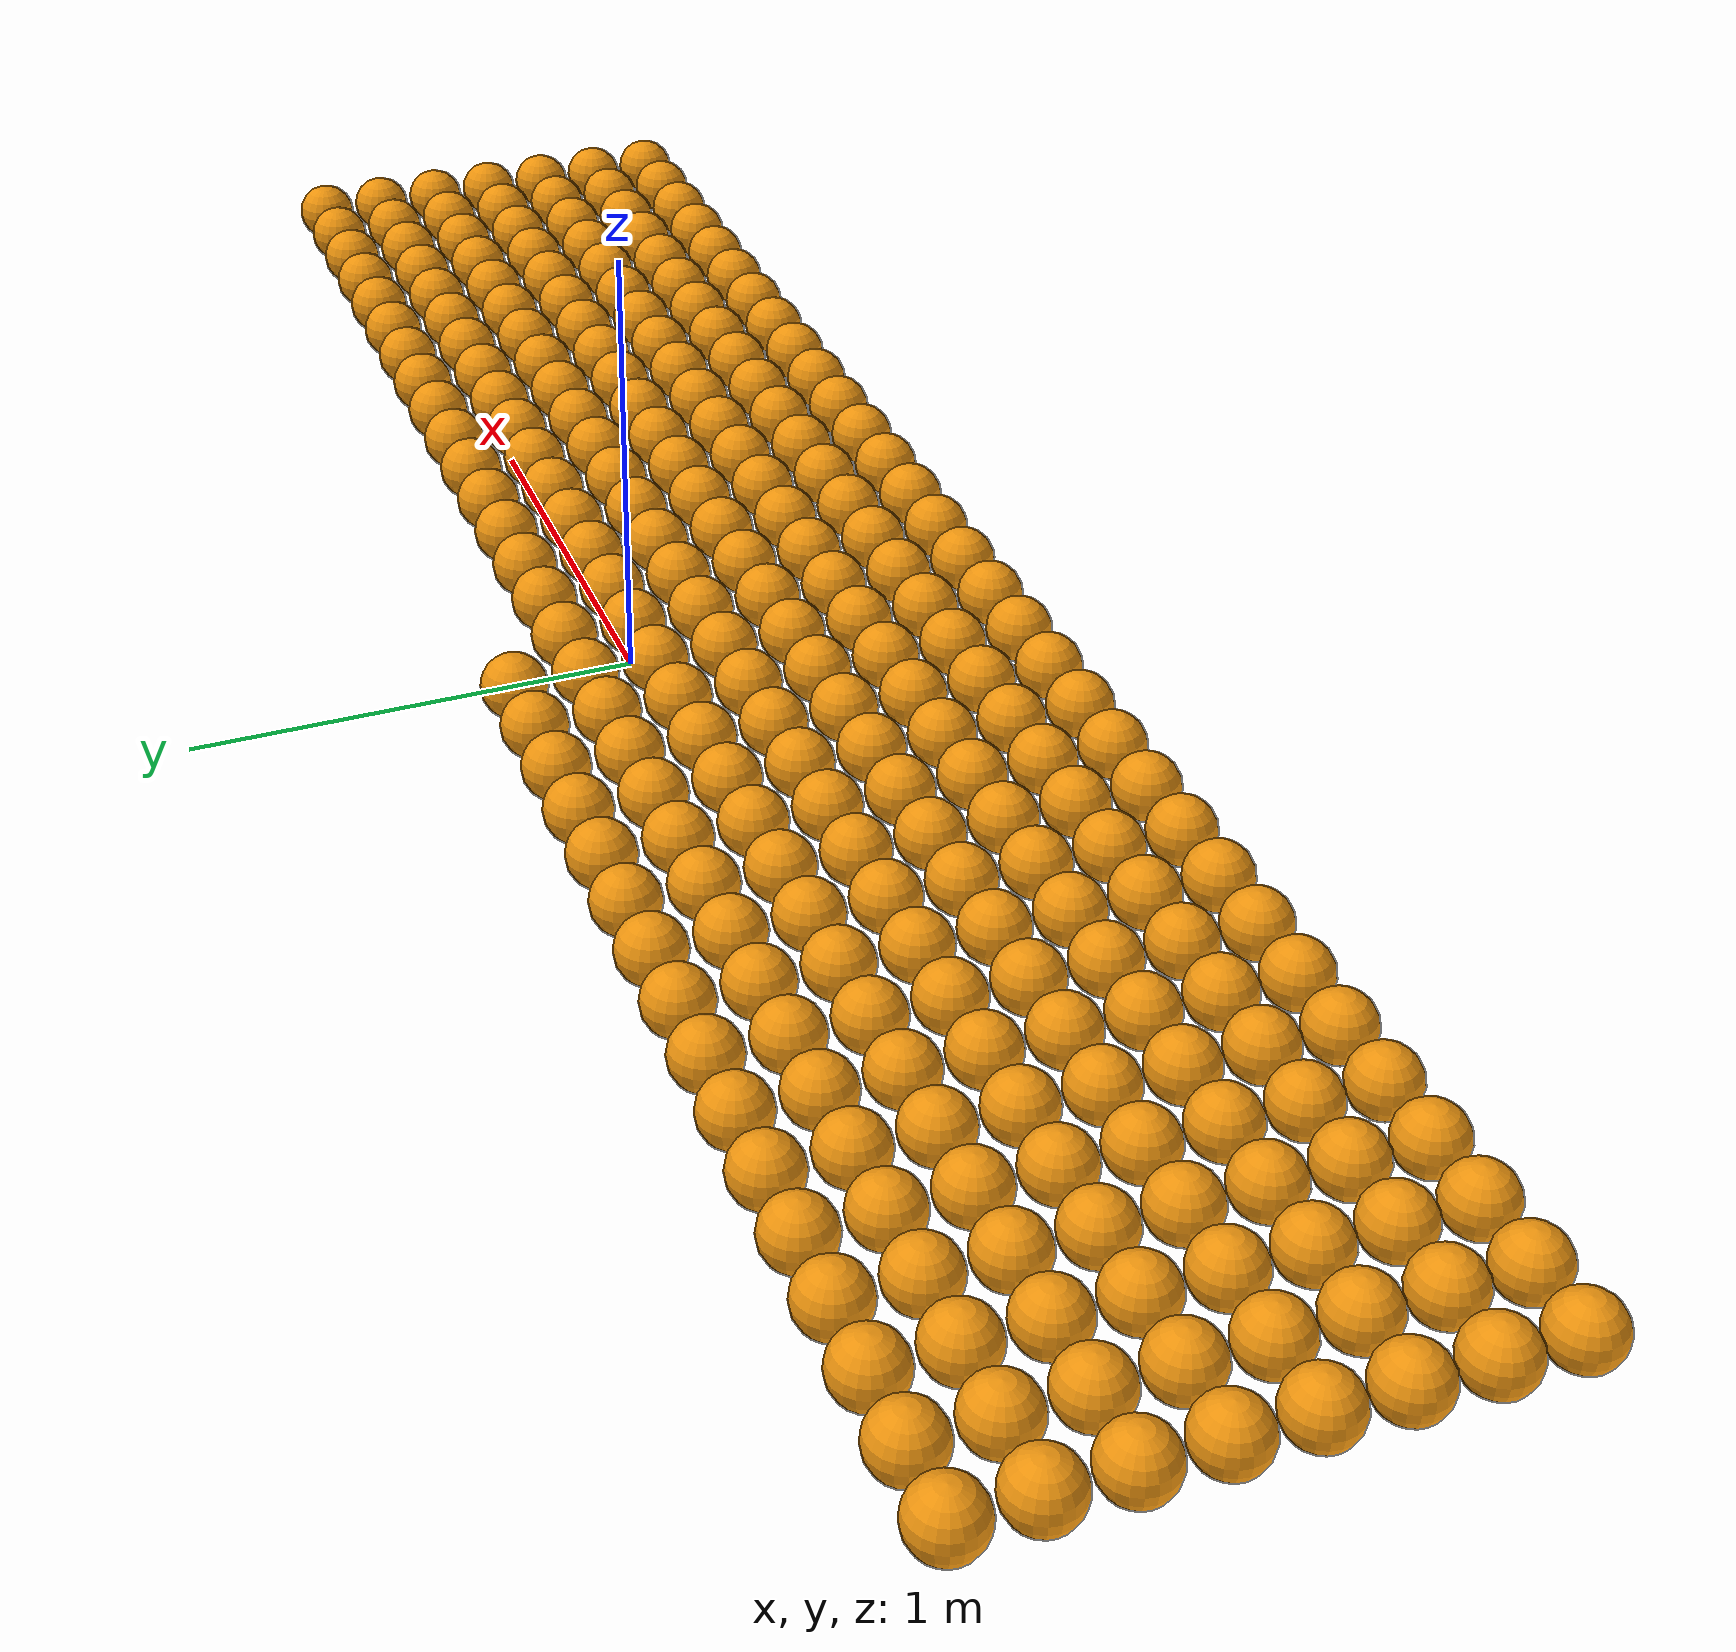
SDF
<?xml version="1.0" ?>
<sdf version="1.11">
  <world name="mars">
    <physics name="250hz" type="ignored">
      <max_step_size>0.004</max_step_size><real_time_factor>0</real_time_factor>
    </physics>
    <plugin filename="gz-sim-physics-system" name="gz::sim::systems::Physics"/>
    <plugin filename="gz-sim-scene-broadcaster-system" name="gz::sim::systems::SceneBroadcaster"/>
    <gravity>0 0 -9.8</gravity>
    <light type="directional" name="sun"><pose>0 0 10 0 0 0</pose>
      <diffuse>0.8 0.8 0.8 1</diffuse><direction>-0.5 0.1 -0.9</direction></light>
    <model name="ground_plane"><static>true</static><link name="link">
      <collision name="collision"><geometry><plane><normal>0 0 1</normal></plane></geometry>
      <surface><friction><ode><mu>0.9</mu><mu2>0.9</mu2></ode></friction></surface></collision>
    </link></model>
    <include><uri>model://fuel</uri><name>fuel_0</name><pose>-2.5340 -0.8340 0.0750 0 0 0</pose></include>
    <include><uri>model://fuel</uri><name>fuel_1</name><pose>-2.3720 -0.8340 0.0750 0 0 0</pose></include>
    <include><uri>model://fuel</uri><name>fuel_2</name><pose>-2.2100 -0.8340 0.0750 0 0 0</pose></include>
    <include><uri>model://fuel</uri><name>fuel_3</name><pose>-2.0480 -0.8340 0.0750 0 0 0</pose></include>
    <include><uri>model://fuel</uri><name>fuel_4</name><pose>-1.8860 -0.8340 0.0750 0 0 0</pose></include>
    <include><uri>model://fuel</uri><name>fuel_5</name><pose>-1.7240 -0.8340 0.0750 0 0 0</pose></include>
    <include><uri>model://fuel</uri><name>fuel_6</name><pose>-1.5620 -0.8340 0.0750 0 0 0</pose></include>
    <include><uri>model://fuel</uri><name>fuel_7</name><pose>-1.4000 -0.8340 0.0750 0 0 0</pose></include>
    <include><uri>model://fuel</uri><name>fuel_8</name><pose>-1.2380 -0.8340 0.0750 0 0 0</pose></include>
    <include><uri>model://fuel</uri><name>fuel_9</name><pose>-1.0760 -0.8340 0.0750 0 0 0</pose></include>
    <include><uri>model://fuel</uri><name>fuel_10</name><pose>-0.9140 -0.8340 0.0750 0 0 0</pose></include>
    <include><uri>model://fuel</uri><name>fuel_11</name><pose>-0.7520 -0.8340 0.0750 0 0 0</pose></include>
    <include><uri>model://fuel</uri><name>fuel_12</name><pose>-0.5900 -0.8340 0.0750 0 0 0</pose></include>
    <include><uri>model://fuel</uri><name>fuel_13</name><pose>-0.4280 -0.8340 0.0750 0 0 0</pose></include>
    <include><uri>model://fuel</uri><name>fuel_14</name><pose>-0.2660 -0.8340 0.0750 0 0 0</pose></include>
    <include><uri>model://fuel</uri><name>fuel_15</name><pose>-0.1040 -0.8340 0.0750 0 0 0</pose></include>
    <include><uri>model://fuel</uri><name>fuel_16</name><pose>0.0580 -0.8340 0.0750 0 0 0</pose></include>
    <include><uri>model://fuel</uri><name>fuel_17</name><pose>0.2200 -0.8340 0.0750 0 0 0</pose></include>
    <include><uri>model://fuel</uri><name>fuel_18</name><pose>0.3820 -0.8340 0.0750 0 0 0</pose></include>
    <include><uri>model://fuel</uri><name>fuel_19</name><pose>0.5440 -0.8340 0.0750 0 0 0</pose></include>
    <include><uri>model://fuel</uri><name>fuel_20</name><pose>0.7060 -0.8340 0.0750 0 0 0</pose></include>
    <include><uri>model://fuel</uri><name>fuel_21</name><pose>0.8680 -0.8340 0.0750 0 0 0</pose></include>
    <include><uri>model://fuel</uri><name>fuel_22</name><pose>1.0300 -0.8340 0.0750 0 0 0</pose></include>
    <include><uri>model://fuel</uri><name>fuel_23</name><pose>1.1920 -0.8340 0.0750 0 0 0</pose></include>
    <include><uri>model://fuel</uri><name>fuel_24</name><pose>1.3540 -0.8340 0.0750 0 0 0</pose></include>
    <include><uri>model://fuel</uri><name>fuel_25</name><pose>1.5160 -0.8340 0.0750 0 0 0</pose></include>
    <include><uri>model://fuel</uri><name>fuel_26</name><pose>1.6780 -0.8340 0.0750 0 0 0</pose></include>
    <include><uri>model://fuel</uri><name>fuel_27</name><pose>1.8400 -0.8340 0.0750 0 0 0</pose></include>
    <include><uri>model://fuel</uri><name>fuel_28</name><pose>2.0020 -0.8340 0.0750 0 0 0</pose></include>
    <include><uri>model://fuel</uri><name>fuel_29</name><pose>2.1640 -0.8340 0.0750 0 0 0</pose></include>
    <include><uri>model://fuel</uri><name>fuel_30</name><pose>2.3260 -0.8340 0.0750 0 0 0</pose></include>
    <include><uri>model://fuel</uri><name>fuel_31</name><pose>2.4880 -0.8340 0.0750 0 0 0</pose></include>
    <include><uri>model://fuel</uri><name>fuel_32</name><pose>-2.5340 -0.6720 0.0750 0 0 0</pose></include>
    <include><uri>model://fuel</uri><name>fuel_33</name><pose>-2.3720 -0.6720 0.0750 0 0 0</pose></include>
    <include><uri>model://fuel</uri><name>fuel_34</name><pose>-2.2100 -0.6720 0.0750 0 0 0</pose></include>
    <include><uri>model://fuel</uri><name>fuel_35</name><pose>-2.0480 -0.6720 0.0750 0 0 0</pose></include>
    <include><uri>model://fuel</uri><name>fuel_36</name><pose>-1.8860 -0.6720 0.0750 0 0 0</pose></include>
    <include><uri>model://fuel</uri><name>fuel_37</name><pose>-1.7240 -0.6720 0.0750 0 0 0</pose></include>
    <include><uri>model://fuel</uri><name>fuel_38</name><pose>-1.5620 -0.6720 0.0750 0 0 0</pose></include>
    <include><uri>model://fuel</uri><name>fuel_39</name><pose>-1.4000 -0.6720 0.0750 0 0 0</pose></include>
    <include><uri>model://fuel</uri><name>fuel_40</name><pose>-1.2380 -0.6720 0.0750 0 0 0</pose></include>
    <include><uri>model://fuel</uri><name>fuel_41</name><pose>-1.0760 -0.6720 0.0750 0 0 0</pose></include>
    <include><uri>model://fuel</uri><name>fuel_42</name><pose>-0.9140 -0.6720 0.0750 0 0 0</pose></include>
    <include><uri>model://fuel</uri><name>fuel_43</name><pose>-0.7520 -0.6720 0.0750 0 0 0</pose></include>
    <include><uri>model://fuel</uri><name>fuel_44</name><pose>-0.5900 -0.6720 0.0750 0 0 0</pose></include>
    <include><uri>model://fuel</uri><name>fuel_45</name><pose>-0.4280 -0.6720 0.0750 0 0 0</pose></include>
    <include><uri>model://fuel</uri><name>fuel_46</name><pose>-0.2660 -0.6720 0.0750 0 0 0</pose></include>
    <include><uri>model://fuel</uri><name>fuel_47</name><pose>-0.1040 -0.6720 0.0750 0 0 0</pose></include>
    <include><uri>model://fuel</uri><name>fuel_48</name><pose>0.0580 -0.6720 0.0750 0 0 0</pose></include>
    <include><uri>model://fuel</uri><name>fuel_49</name><pose>0.2200 -0.6720 0.0750 0 0 0</pose></include>
    <include><uri>model://fuel</uri><name>fuel_50</name><pose>0.3820 -0.6720 0.0750 0 0 0</pose></include>
    <include><uri>model://fuel</uri><name>fuel_51</name><pose>0.5440 -0.6720 0.0750 0 0 0</pose></include>
    <include><uri>model://fuel</uri><name>fuel_52</name><pose>0.7060 -0.6720 0.0750 0 0 0</pose></include>
    <include><uri>model://fuel</uri><name>fuel_53</name><pose>0.8680 -0.6720 0.0750 0 0 0</pose></include>
    <include><uri>model://fuel</uri><name>fuel_54</name><pose>1.0300 -0.6720 0.0750 0 0 0</pose></include>
    <include><uri>model://fuel</uri><name>fuel_55</name><pose>1.1920 -0.6720 0.0750 0 0 0</pose></include>
    <include><uri>model://fuel</uri><name>fuel_56</name><pose>1.3540 -0.6720 0.0750 0 0 0</pose></include>
    <include><uri>model://fuel</uri><name>fuel_57</name><pose>1.5160 -0.6720 0.0750 0 0 0</pose></include>
    <include><uri>model://fuel</uri><name>fuel_58</name><pose>1.6780 -0.6720 0.0750 0 0 0</pose></include>
    <include><uri>model://fuel</uri><name>fuel_59</name><pose>1.8400 -0.6720 0.0750 0 0 0</pose></include>
    <include><uri>model://fuel</uri><name>fuel_60</name><pose>2.0020 -0.6720 0.0750 0 0 0</pose></include>
    <include><uri>model://fuel</uri><name>fuel_61</name><pose>2.1640 -0.6720 0.0750 0 0 0</pose></include>
    <include><uri>model://fuel</uri><name>fuel_62</name><pose>2.3260 -0.6720 0.0750 0 0 0</pose></include>
    <include><uri>model://fuel</uri><name>fuel_63</name><pose>2.4880 -0.6720 0.0750 0 0 0</pose></include>
    <include><uri>model://fuel</uri><name>fuel_64</name><pose>-2.5340 -0.5100 0.0750 0 0 0</pose></include>
    <include><uri>model://fuel</uri><name>fuel_65</name><pose>-2.3720 -0.5100 0.0750 0 0 0</pose></include>
    <include><uri>model://fuel</uri><name>fuel_66</name><pose>-2.2100 -0.5100 0.0750 0 0 0</pose></include>
    <include><uri>model://fuel</uri><name>fuel_67</name><pose>-2.0480 -0.5100 0.0750 0 0 0</pose></include>
    <include><uri>model://fuel</uri><name>fuel_68</name><pose>-1.8860 -0.5100 0.0750 0 0 0</pose></include>
    <include><uri>model://fuel</uri><name>fuel_69</name><pose>-1.7240 -0.5100 0.0750 0 0 0</pose></include>
    <include><uri>model://fuel</uri><name>fuel_70</name><pose>-1.5620 -0.5100 0.0750 0 0 0</pose></include>
    <include><uri>model://fuel</uri><name>fuel_71</name><pose>-1.4000 -0.5100 0.0750 0 0 0</pose></include>
    <include><uri>model://fuel</uri><name>fuel_72</name><pose>-1.2380 -0.5100 0.0750 0 0 0</pose></include>
    <include><uri>model://fuel</uri><name>fuel_73</name><pose>-1.0760 -0.5100 0.0750 0 0 0</pose></include>
    <include><uri>model://fuel</uri><name>fuel_74</name><pose>-0.9140 -0.5100 0.0750 0 0 0</pose></include>
    <include><uri>model://fuel</uri><name>fuel_75</name><pose>-0.7520 -0.5100 0.0750 0 0 0</pose></include>
    <include><uri>model://fuel</uri><name>fuel_76</name><pose>-0.5900 -0.5100 0.0750 0 0 0</pose></include>
    <include><uri>model://fuel</uri><name>fuel_77</name><pose>-0.4280 -0.5100 0.0750 0 0 0</pose></include>
    <include><uri>model://fuel</uri><name>fuel_78</name><pose>-0.2660 -0.5100 0.0750 0 0 0</pose></include>
    <include><uri>model://fuel</uri><name>fuel_79</name><pose>-0.1040 -0.5100 0.0750 0 0 0</pose></include>
    <include><uri>model://fuel</uri><name>fuel_80</name><pose>0.0580 -0.5100 0.0750 0 0 0</pose></include>
    <include><uri>model://fuel</uri><name>fuel_81</name><pose>0.2200 -0.5100 0.0750 0 0 0</pose></include>
    <include><uri>model://fuel</uri><name>fuel_82</name><pose>0.3820 -0.5100 0.0750 0 0 0</pose></include>
    <include><uri>model://fuel</uri><name>fuel_83</name><pose>0.5440 -0.5100 0.0750 0 0 0</pose></include>
    <include><uri>model://fuel</uri><name>fuel_84</name><pose>0.7060 -0.5100 0.0750 0 0 0</pose></include>
    <include><uri>model://fuel</uri><name>fuel_85</name><pose>0.8680 -0.5100 0.0750 0 0 0</pose></include>
    <include><uri>model://fuel</uri><name>fuel_86</name><pose>1.0300 -0.5100 0.0750 0 0 0</pose></include>
    <include><uri>model://fuel</uri><name>fuel_87</name><pose>1.1920 -0.5100 0.0750 0 0 0</pose></include>
    <include><uri>model://fuel</uri><name>fuel_88</name><pose>1.3540 -0.5100 0.0750 0 0 0</pose></include>
    <include><uri>model://fuel</uri><name>fuel_89</name><pose>1.5160 -0.5100 0.0750 0 0 0</pose></include>
    <include><uri>model://fuel</uri><name>fuel_90</name><pose>1.6780 -0.5100 0.0750 0 0 0</pose></include>
    <include><uri>model://fuel</uri><name>fuel_91</name><pose>1.8400 -0.5100 0.0750 0 0 0</pose></include>
    <include><uri>model://fuel</uri><name>fuel_92</name><pose>2.0020 -0.5100 0.0750 0 0 0</pose></include>
    <include><uri>model://fuel</uri><name>fuel_93</name><pose>2.1640 -0.5100 0.0750 0 0 0</pose></include>
    <include><uri>model://fuel</uri><name>fuel_94</name><pose>2.3260 -0.5100 0.0750 0 0 0</pose></include>
    <include><uri>model://fuel</uri><name>fuel_95</name><pose>2.4880 -0.5100 0.0750 0 0 0</pose></include>
    <include><uri>model://fuel</uri><name>fuel_96</name><pose>-2.5340 -0.3480 0.0750 0 0 0</pose></include>
    <include><uri>model://fuel</uri><name>fuel_97</name><pose>-2.3720 -0.3480 0.0750 0 0 0</pose></include>
    <include><uri>model://fuel</uri><name>fuel_98</name><pose>-2.2100 -0.3480 0.0750 0 0 0</pose></include>
    <include><uri>model://fuel</uri><name>fuel_99</name><pose>-2.0480 -0.3480 0.0750 0 0 0</pose></include>
    <include><uri>model://fuel</uri><name>fuel_100</name><pose>-1.8860 -0.3480 0.0750 0 0 0</pose></include>
    <include><uri>model://fuel</uri><name>fuel_101</name><pose>-1.7240 -0.3480 0.0750 0 0 0</pose></include>
    <include><uri>model://fuel</uri><name>fuel_102</name><pose>-1.5620 -0.3480 0.0750 0 0 0</pose></include>
    <include><uri>model://fuel</uri><name>fuel_103</name><pose>-1.4000 -0.3480 0.0750 0 0 0</pose></include>
    <include><uri>model://fuel</uri><name>fuel_104</name><pose>-1.2380 -0.3480 0.0750 0 0 0</pose></include>
    <include><uri>model://fuel</uri><name>fuel_105</name><pose>-1.0760 -0.3480 0.0750 0 0 0</pose></include>
    <include><uri>model://fuel</uri><name>fuel_106</name><pose>-0.9140 -0.3480 0.0750 0 0 0</pose></include>
    <include><uri>model://fuel</uri><name>fuel_107</name><pose>-0.7520 -0.3480 0.0750 0 0 0</pose></include>
    <include><uri>model://fuel</uri><name>fuel_108</name><pose>-0.5900 -0.3480 0.0750 0 0 0</pose></include>
    <include><uri>model://fuel</uri><name>fuel_109</name><pose>-0.4280 -0.3480 0.0750 0 0 0</pose></include>
    <include><uri>model://fuel</uri><name>fuel_110</name><pose>-0.2660 -0.3480 0.0750 0 0 0</pose></include>
    <include><uri>model://fuel</uri><name>fuel_111</name><pose>-0.1040 -0.3480 0.0750 0 0 0</pose></include>
    <include><uri>model://fuel</uri><name>fuel_112</name><pose>0.0580 -0.3480 0.0750 0 0 0</pose></include>
    <include><uri>model://fuel</uri><name>fuel_113</name><pose>0.2200 -0.3480 0.0750 0 0 0</pose></include>
    <include><uri>model://fuel</uri><name>fuel_114</name><pose>0.3820 -0.3480 0.0750 0 0 0</pose></include>
    <include><uri>model://fuel</uri><name>fuel_115</name><pose>0.5440 -0.3480 0.0750 0 0 0</pose></include>
    <include><uri>model://fuel</uri><name>fuel_116</name><pose>0.7060 -0.3480 0.0750 0 0 0</pose></include>
    <include><uri>model://fuel</uri><name>fuel_117</name><pose>0.8680 -0.3480 0.0750 0 0 0</pose></include>
    <include><uri>model://fuel</uri><name>fuel_118</name><pose>1.0300 -0.3480 0.0750 0 0 0</pose></include>
    <include><uri>model://fuel</uri><name>fuel_119</name><pose>1.1920 -0.3480 0.0750 0 0 0</pose></include>
    <include><uri>model://fuel</uri><name>fuel_120</name><pose>1.3540 -0.3480 0.0750 0 0 0</pose></include>
    <include><uri>model://fuel</uri><name>fuel_121</name><pose>1.5160 -0.3480 0.0750 0 0 0</pose></include>
    <include><uri>model://fuel</uri><name>fuel_122</name><pose>1.6780 -0.3480 0.0750 0 0 0</pose></include>
    <include><uri>model://fuel</uri><name>fuel_123</name><pose>1.8400 -0.3480 0.0750 0 0 0</pose></include>
    <include><uri>model://fuel</uri><name>fuel_124</name><pose>2.0020 -0.3480 0.0750 0 0 0</pose></include>
    <include><uri>model://fuel</uri><name>fuel_125</name><pose>2.1640 -0.3480 0.0750 0 0 0</pose></include>
    <include><uri>model://fuel</uri><name>fuel_126</name><pose>2.3260 -0.3480 0.0750 0 0 0</pose></include>
    <include><uri>model://fuel</uri><name>fuel_127</name><pose>2.4880 -0.3480 0.0750 0 0 0</pose></include>
    <include><uri>model://fuel</uri><name>fuel_128</name><pose>-2.5340 -0.1860 0.0750 0 0 0</pose></include>
    <include><uri>model://fuel</uri><name>fuel_129</name><pose>-2.3720 -0.1860 0.0750 0 0 0</pose></include>
    <include><uri>model://fuel</uri><name>fuel_130</name><pose>-2.2100 -0.1860 0.0750 0 0 0</pose></include>
    <include><uri>model://fuel</uri><name>fuel_131</name><pose>-2.0480 -0.1860 0.0750 0 0 0</pose></include>
    <include><uri>model://fuel</uri><name>fuel_132</name><pose>-1.8860 -0.1860 0.0750 0 0 0</pose></include>
    <include><uri>model://fuel</uri><name>fuel_133</name><pose>-1.7240 -0.1860 0.0750 0 0 0</pose></include>
    <include><uri>model://fuel</uri><name>fuel_134</name><pose>-1.5620 -0.1860 0.0750 0 0 0</pose></include>
    <include><uri>model://fuel</uri><name>fuel_135</name><pose>-1.4000 -0.1860 0.0750 0 0 0</pose></include>
    <include><uri>model://fuel</uri><name>fuel_136</name><pose>-1.2380 -0.1860 0.0750 0 0 0</pose></include>
    <include><uri>model://fuel</uri><name>fuel_137</name><pose>-1.0760 -0.1860 0.0750 0 0 0</pose></include>
    <include><uri>model://fuel</uri><name>fuel_138</name><pose>-0.9140 -0.1860 0.0750 0 0 0</pose></include>
    <include><uri>model://fuel</uri><name>fuel_139</name><pose>-0.7520 -0.1860 0.0750 0 0 0</pose></include>
    <include><uri>model://fuel</uri><name>fuel_140</name><pose>-0.5900 -0.1860 0.0750 0 0 0</pose></include>
    <include><uri>model://fuel</uri><name>fuel_141</name><pose>-0.4280 -0.1860 0.0750 0 0 0</pose></include>
    <include><uri>model://fuel</uri><name>fuel_142</name><pose>-0.2660 -0.1860 0.0750 0 0 0</pose></include>
    <include><uri>model://fuel</uri><name>fuel_143</name><pose>-0.1040 -0.1860 0.0750 0 0 0</pose></include>
    <include><uri>model://fuel</uri><name>fuel_144</name><pose>0.0580 -0.1860 0.0750 0 0 0</pose></include>
    <include><uri>model://fuel</uri><name>fuel_145</name><pose>0.2200 -0.1860 0.0750 0 0 0</pose></include>
    <include><uri>model://fuel</uri><name>fuel_146</name><pose>0.3820 -0.1860 0.0750 0 0 0</pose></include>
    <include><uri>model://fuel</uri><name>fuel_147</name><pose>0.5440 -0.1860 0.0750 0 0 0</pose></include>
    <include><uri>model://fuel</uri><name>fuel_148</name><pose>0.7060 -0.1860 0.0750 0 0 0</pose></include>
    <include><uri>model://fuel</uri><name>fuel_149</name><pose>0.8680 -0.1860 0.0750 0 0 0</pose></include>
    <include><uri>model://fuel</uri><name>fuel_150</name><pose>1.0300 -0.1860 0.0750 0 0 0</pose></include>
    <include><uri>model://fuel</uri><name>fuel_151</name><pose>1.1920 -0.1860 0.0750 0 0 0</pose></include>
    <include><uri>model://fuel</uri><name>fuel_152</name><pose>1.3540 -0.1860 0.0750 0 0 0</pose></include>
    <include><uri>model://fuel</uri><name>fuel_153</name><pose>1.5160 -0.1860 0.0750 0 0 0</pose></include>
    <include><uri>model://fuel</uri><name>fuel_154</name><pose>1.6780 -0.1860 0.0750 0 0 0</pose></include>
    <include><uri>model://fuel</uri><name>fuel_155</name><pose>1.8400 -0.1860 0.0750 0 0 0</pose></include>
    <include><uri>model://fuel</uri><name>fuel_156</name><pose>2.0020 -0.1860 0.0750 0 0 0</pose></include>
    <include><uri>model://fuel</uri><name>fuel_157</name><pose>2.1640 -0.1860 0.0750 0 0 0</pose></include>
    <include><uri>model://fuel</uri><name>fuel_158</name><pose>2.3260 -0.1860 0.0750 0 0 0</pose></include>
    <include><uri>model://fuel</uri><name>fuel_159</name><pose>2.4880 -0.1860 0.0750 0 0 0</pose></include>
    <include><uri>model://fuel</uri><name>fuel_160</name><pose>-2.5340 -0.0240 0.0750 0 0 0</pose></include>
    <include><uri>model://fuel</uri><name>fuel_161</name><pose>-2.3720 -0.0240 0.0750 0 0 0</pose></include>
    <include><uri>model://fuel</uri><name>fuel_162</name><pose>-2.2100 -0.0240 0.0750 0 0 0</pose></include>
    <include><uri>model://fuel</uri><name>fuel_163</name><pose>-2.0480 -0.0240 0.0750 0 0 0</pose></include>
    <include><uri>model://fuel</uri><name>fuel_164</name><pose>-1.8860 -0.0240 0.0750 0 0 0</pose></include>
    <include><uri>model://fuel</uri><name>fuel_165</name><pose>-1.7240 -0.0240 0.0750 0 0 0</pose></include>
    <include><uri>model://fuel</uri><name>fuel_166</name><pose>-1.5620 -0.0240 0.0750 0 0 0</pose></include>
    <include><uri>model://fuel</uri><name>fuel_167</name><pose>-1.4000 -0.0240 0.0750 0 0 0</pose></include>
    <include><uri>model://fuel</uri><name>fuel_168</name><pose>-1.2380 -0.0240 0.0750 0 0 0</pose></include>
    <include><uri>model://fuel</uri><name>fuel_169</name><pose>-1.0760 -0.0240 0.0750 0 0 0</pose></include>
    <include><uri>model://fuel</uri><name>fuel_170</name><pose>-0.9140 -0.0240 0.0750 0 0 0</pose></include>
    <include><uri>model://fuel</uri><name>fuel_171</name><pose>-0.7520 -0.0240 0.0750 0 0 0</pose></include>
    <include><uri>model://fuel</uri><name>fuel_172</name><pose>-0.5900 -0.0240 0.0750 0 0 0</pose></include>
    <include><uri>model://fuel</uri><name>fuel_173</name><pose>-0.4280 -0.0240 0.0750 0 0 0</pose></include>
    <include><uri>model://fuel</uri><name>fuel_174</name><pose>-0.2660 -0.0240 0.0750 0 0 0</pose></include>
    <include><uri>model://fuel</uri><name>fuel_175</name><pose>-0.1040 -0.0240 0.0750 0 0 0</pose></include>
    <include><uri>model://fuel</uri><name>fuel_176</name><pose>0.0580 -0.0240 0.0750 0 0 0</pose></include>
    <include><uri>model://fuel</uri><name>fuel_177</name><pose>0.2200 -0.0240 0.0750 0 0 0</pose></include>
    <include><uri>model://fuel</uri><name>fuel_178</name><pose>0.3820 -0.0240 0.0750 0 0 0</pose></include>
    <include><uri>model://fuel</uri><name>fuel_179</name><pose>0.5440 -0.0240 0.0750 0 0 0</pose></include>
    <include><uri>model://fuel</uri><name>fuel_180</name><pose>0.7060 -0.0240 0.0750 0 0 0</pose></include>
    <include><uri>model://fuel</uri><name>fuel_181</name><pose>0.8680 -0.0240 0.0750 0 0 0</pose></include>
    <include><uri>model://fuel</uri><name>fuel_182</name><pose>1.0300 -0.0240 0.0750 0 0 0</pose></include>
    <include><uri>model://fuel</uri><name>fuel_183</name><pose>1.1920 -0.0240 0.0750 0 0 0</pose></include>
    <include><uri>model://fuel</uri><name>fuel_184</name><pose>1.3540 -0.0240 0.0750 0 0 0</pose></include>
    <include><uri>model://fuel</uri><name>fuel_185</name><pose>1.5160 -0.0240 0.0750 0 0 0</pose></include>
    <include><uri>model://fuel</uri><name>fuel_186</name><pose>1.6780 -0.0240 0.0750 0 0 0</pose></include>
    <include><uri>model://fuel</uri><name>fuel_187</name><pose>1.8400 -0.0240 0.0750 0 0 0</pose></include>
    <include><uri>model://fuel</uri><name>fuel_188</name><pose>2.0020 -0.0240 0.0750 0 0 0</pose></include>
    <include><uri>model://fuel</uri><name>fuel_189</name><pose>2.1640 -0.0240 0.0750 0 0 0</pose></include>
    <include><uri>model://fuel</uri><name>fuel_190</name><pose>2.3260 -0.0240 0.0750 0 0 0</pose></include>
    <include><uri>model://fuel</uri><name>fuel_191</name><pose>2.4880 -0.0240 0.0750 0 0 0</pose></include>
    <include><uri>model://fuel</uri><name>fuel_192</name><pose>-2.5340 0.1380 0.0750 0 0 0</pose></include>
    <include><uri>model://fuel</uri><name>fuel_193</name><pose>-2.3720 0.1380 0.0750 0 0 0</pose></include>
    <include><uri>model://fuel</uri><name>fuel_194</name><pose>-2.2100 0.1380 0.0750 0 0 0</pose></include>
    <include><uri>model://fuel</uri><name>fuel_195</name><pose>-2.0480 0.1380 0.0750 0 0 0</pose></include>
    <include><uri>model://fuel</uri><name>fuel_196</name><pose>-1.8860 0.1380 0.0750 0 0 0</pose></include>
    <include><uri>model://fuel</uri><name>fuel_197</name><pose>-1.7240 0.1380 0.0750 0 0 0</pose></include>
    <include><uri>model://fuel</uri><name>fuel_198</name><pose>-1.5620 0.1380 0.0750 0 0 0</pose></include>
    <include><uri>model://fuel</uri><name>fuel_199</name><pose>-1.4000 0.1380 0.0750 0 0 0</pose></include>
    <include><uri>model://fuel</uri><name>fuel_200</name><pose>-1.2380 0.1380 0.0750 0 0 0</pose></include>
    <include><uri>model://fuel</uri><name>fuel_201</name><pose>-1.0760 0.1380 0.0750 0 0 0</pose></include>
    <include><uri>model://fuel</uri><name>fuel_202</name><pose>-0.9140 0.1380 0.0750 0 0 0</pose></include>
    <include><uri>model://fuel</uri><name>fuel_203</name><pose>-0.7520 0.1380 0.0750 0 0 0</pose></include>
    <include><uri>model://fuel</uri><name>fuel_204</name><pose>-0.5900 0.1380 0.0750 0 0 0</pose></include>
    <include><uri>model://fuel</uri><name>fuel_205</name><pose>-0.4280 0.1380 0.0750 0 0 0</pose></include>
    <include><uri>model://fuel</uri><name>fuel_206</name><pose>-0.2660 0.1380 0.0750 0 0 0</pose></include>
    <include><uri>model://fuel</uri><name>fuel_207</name><pose>-0.1040 0.1380 0.0750 0 0 0</pose></include>
    <include><uri>model://fuel</uri><name>fuel_208</name><pose>0.0580 0.1380 0.0750 0 0 0</pose></include>
    <include><uri>model://fuel</uri><name>fuel_209</name><pose>0.2200 0.1380 0.0750 0 0 0</pose></include>
    <include><uri>model://fuel</uri><name>fuel_210</name><pose>0.3820 0.1380 0.0750 0 0 0</pose></include>
    <include><uri>model://fuel</uri><name>fuel_211</name><pose>0.5440 0.1380 0.0750 0 0 0</pose></include>
    <include><uri>model://fuel</uri><name>fuel_212</name><pose>0.7060 0.1380 0.0750 0 0 0</pose></include>
    <include><uri>model://fuel</uri><name>fuel_213</name><pose>0.8680 0.1380 0.0750 0 0 0</pose></include>
    <include><uri>model://fuel</uri><name>fuel_214</name><pose>1.0300 0.1380 0.0750 0 0 0</pose></include>
    <include><uri>model://fuel</uri><name>fuel_215</name><pose>1.1920 0.1380 0.0750 0 0 0</pose></include>
    <include><uri>model://fuel</uri><name>fuel_216</name><pose>1.3540 0.1380 0.0750 0 0 0</pose></include>
    <include><uri>model://fuel</uri><name>fuel_217</name><pose>1.5160 0.1380 0.0750 0 0 0</pose></include>
    <include><uri>model://fuel</uri><name>fuel_218</name><pose>1.6780 0.1380 0.0750 0 0 0</pose></include>
    <include><uri>model://fuel</uri><name>fuel_219</name><pose>1.8400 0.1380 0.0750 0 0 0</pose></include>
    <include><uri>model://fuel</uri><name>fuel_220</name><pose>2.0020 0.1380 0.0750 0 0 0</pose></include>
    <include><uri>model://fuel</uri><name>fuel_221</name><pose>2.1640 0.1380 0.0750 0 0 0</pose></include>
    <include><uri>model://fuel</uri><name>fuel_222</name><pose>2.3260 0.1380 0.0750 0 0 0</pose></include>
    <include><uri>model://fuel</uri><name>fuel_223</name><pose>2.4880 0.1380 0.0750 0 0 0</pose></include>
    <include><uri>model://fuel</uri><name>fuel_224</name><pose>-2.5340 0.3000 0.0750 0 0 0</pose></include>
    <include><uri>model://fuel</uri><name>fuel_225</name><pose>-2.3720 0.3000 0.0750 0 0 0</pose></include>
    <include><uri>model://fuel</uri><name>fuel_226</name><pose>-2.2100 0.3000 0.0750 0 0 0</pose></include>
    <include><uri>model://fuel</uri><name>fuel_227</name><pose>-2.0480 0.3000 0.0750 0 0 0</pose></include>
    <include><uri>model://fuel</uri><name>fuel_228</name><pose>-1.8860 0.3000 0.0750 0 0 0</pose></include>
    <include><uri>model://fuel</uri><name>fuel_229</name><pose>-1.7240 0.3000 0.0750 0 0 0</pose></include>
    <include><uri>model://fuel</uri><name>fuel_230</name><pose>-1.5620 0.3000 0.0750 0 0 0</pose></include>
    <include><uri>model://fuel</uri><name>fuel_231</name><pose>-1.4000 0.3000 0.0750 0 0 0</pose></include>
    <include><uri>model://fuel</uri><name>fuel_232</name><pose>-1.2380 0.3000 0.0750 0 0 0</pose></include>
    <include><uri>model://fuel</uri><name>fuel_233</name><pose>-1.0760 0.3000 0.0750 0 0 0</pose></include>
    <include><uri>model://fuel</uri><name>fuel_234</name><pose>-0.9140 0.3000 0.0750 0 0 0</pose></include>
    <include><uri>model://fuel</uri><name>fuel_235</name><pose>-0.7520 0.3000 0.0750 0 0 0</pose></include>
    <include><uri>model://fuel</uri><name>fuel_236</name><pose>-0.5900 0.3000 0.0750 0 0 0</pose></include>
    <include><uri>model://fuel</uri><name>fuel_237</name><pose>-0.4280 0.3000 0.0750 0 0 0</pose></include>
    <include><uri>model://fuel</uri><name>fuel_238</name><pose>-0.2660 0.3000 0.0750 0 0 0</pose></include>
    <include><uri>model://fuel</uri><name>fuel_239</name><pose>-0.1040 0.3000 0.0750 0 0 0</pose></include>
  </world>
</sdf>

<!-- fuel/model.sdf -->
<sdf version="1.11">
  <model name="fuel">
    <link name="link">

      <inertial>
        <mass>0.215</mass>
        <inertia>
          <ixx>4.8375e-4</ixx><ixy>0</ixy><ixz>0</ixz>
          <iyy>4.8375e-4</iyy><iyz>0</iyz>
          <izz>4.8375e-4</izz>
        </inertia>
      </inertial>

      <collision name="collision">
        <geometry><sphere><radius>0.075</radius></sphere></geometry>
        <surface>
          <friction>
            <ode>
              <mu>0.85</mu>
              <mu2>0.85</mu2>
            </ode>
          </friction>
        </surface>
      </collision>

      <visual name="visual">
        <geometry><sphere><radius>0.075</radius></sphere></geometry>
        <material>
          <ambient>0.38 0.24 0.02 1</ambient>
          <diffuse>0.956 0.597 0.056 1</diffuse>
          <specular>0.05 0.05 0.05 1</specular>
        </material>
      </visual>

    </link>
  </model>
</sdf>
